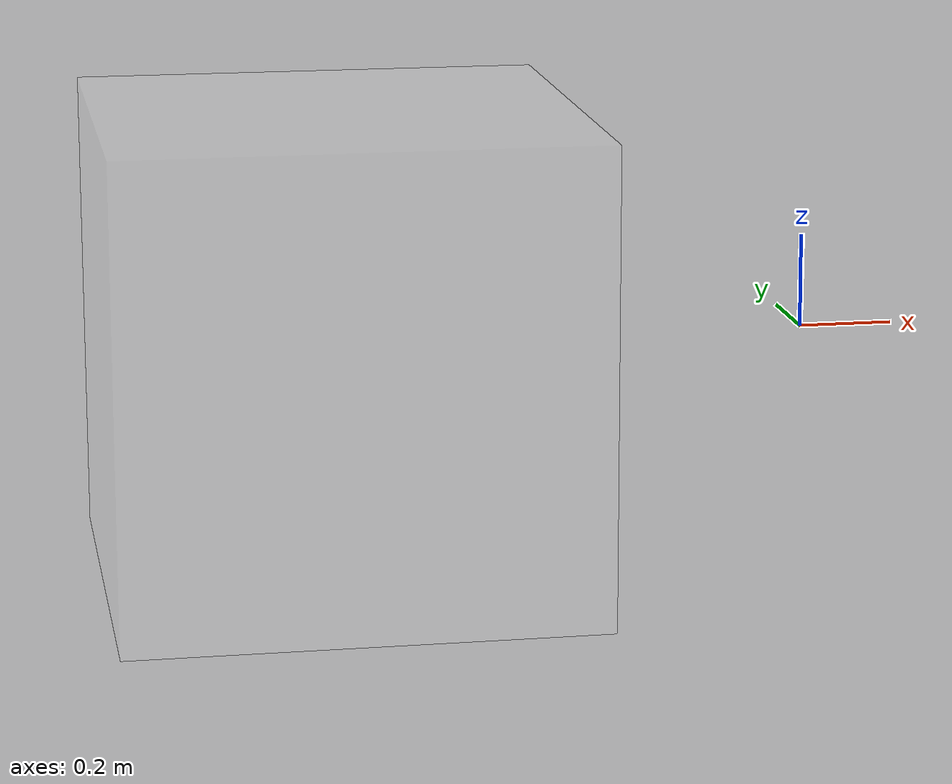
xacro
<?xml version="1.0"?>

<robot xmlns:xacro="http://www.ros.org/wiki/xacro"  name="sarah">

    <!-- commandline args to determine how to build robot -->
    <xacro:arg name="target_robot" default="test"/>
    <xacro:arg name="simulation"   default="true"/>

    <!-- properties -->
    <xacro:property name="mesh_folder" value="/home/es/Documents/GitHub/IGVC25/src/igvc25/description/meshes"/>

    <!-- Origin of the robot in space - should be at pivot point
         basically a xyz origin reference with no shape or size -->
    <link name="base_link"></link>

    <!-- Projection of base_link onto ground -->
    <link name="base_footprint"></link>

    <!-- rviz2 materials -->
    <xacro:include filename="macros/materials.xacro"/>
    <!-- macros to generate common sections -->
    <xacro:include filename="macros/inertial_macros.xacro"/>
    <xacro:include filename="macros/componet_macros.xacro"/>

    <!-- include selected robot description -->
    <xacro:include filename="$(arg target_robot).robot.xacro"/>

</robot>

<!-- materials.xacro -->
<robot xmlns:xacro="http://www.ros.org/wiki/xacro">

    <material name="white">
        <color rgba="1 1 1 0.1" />
    </material>

    <material name="black">
        <color rgba="0 0 0 1" />
    </material>

    <material name="red">
        <color rgba="1 0 0 1" />
    </material>

    <material name="green">
        <color rgba="0 1 0 1" />
    </material>

    <material name="blue">
        <color rgba="0.2 0.2 1 1" />
    </material>

    <material name="orange">
        <color rgba="1 0.3 0.1 1" />
    </material>

</robot>

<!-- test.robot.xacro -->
<robot xmlns:xacro="http://www.ros.org/wiki/xacro"  name="robot">

    <joint name="footprint_joint" type="fixed">
        <parent link="base_link"/>
        <child link="base_footprint"/>
        <!-- difference in pos of base link and footprint -->
        <origin xyz="0.0 0.0 -1.0" rpy="0.0 0.0 0.0"/>
    </joint>

    <link name="test_link">
        <visual name="">
            <origin xyz="0.0 0.0 0.0" rpy="0.0 0.0 0.0"/>
            <geometry>
                <box size="1.0 1.0 1.0"/>
            </geometry>
            <material name="white"/>
        </visual>
    </link>

    <joint name="test_joint" type="fixed">
        <parent link="base_link"/>
        <child link="test_link"/>
        <origin xyz="-1.0 0.0 0.0"/>
    </joint>

</robot>
